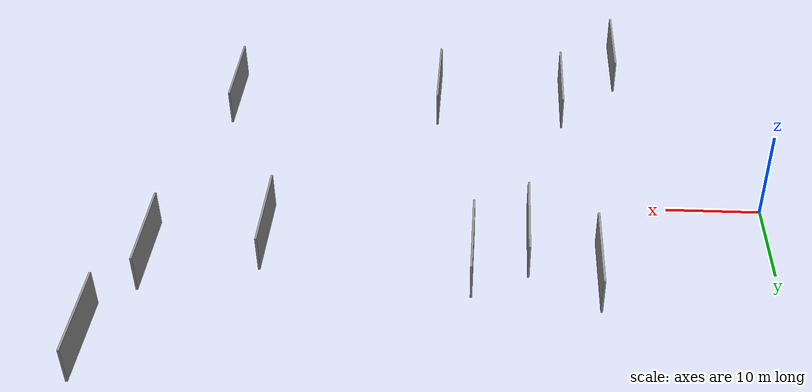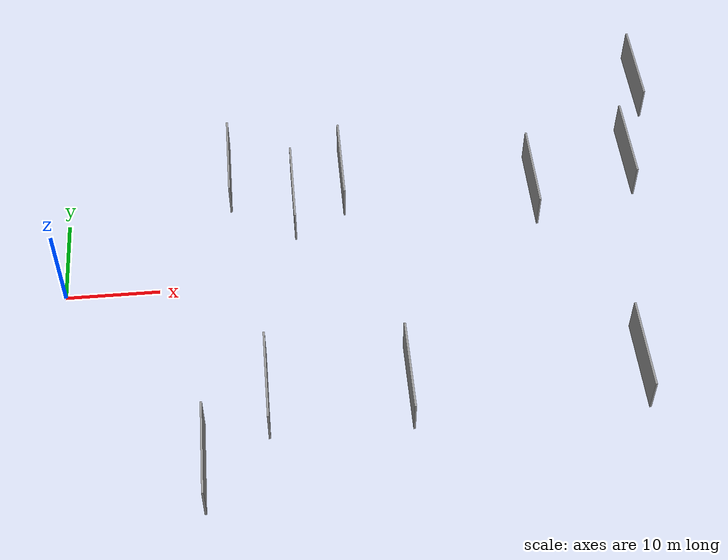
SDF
<sdf version="1.6">
 <world name="default">
  <scene>
   <sky><clouds><speed>12</speed></clouds></sky>
   <ambient>0.4 0.4 0.4 1</ambient>
   <background>0.7 0.7 0.7 1</background>
   <shadows>1</shadows>
  </scene>
  <gravity>0 0 -9.8066</gravity>
  <magnetic_field>6e-06 2.3e-05 -4.2e-05</magnetic_field>
  <physics default="0" name="default_physics" type="ode">
   <ode>
    <solver>
     <type>quick</type>
     <iters>10</iters>
     <sor>1.0</sor>
     <use_dynamic_moi_rescaling>0</use_dynamic_moi_rescaling>
    </solver>
    <constraints>
     <cfm>0</cfm>
     <erp>0.2</erp>
     <contact_max_correcting_vel>100</contact_max_correcting_vel>
     <contact_surface_layer>0.001</contact_surface_layer>
    </constraints>
   </ode>
   <max_step_size>0.004</max_step_size>
   <real_time_factor>1</real_time_factor>
   <real_time_update_rate>250</real_time_update_rate>
  </physics>
  <light name="sun" type="directional">
   <pose>0 0 10 0 0 0</pose>
   <diffuse>0.8 0.8 0.8 1</diffuse>
   <specular>0.2 0.2 0.2 1</specular>
   <attenuation>
    <range>1000</range>
    <constant>0.9</constant>
    <linear>0.01</linear>
    <quadratic>0.001</quadratic>
   </attenuation>
   <direction>-0.5 0.1 -0.9</direction>
  </light>
  <model name="grey_wall_1">
   <static>1</static>
   <pose>14.6973 -23.8588 2.5 0.000000 0.000000 1.570796</pose>
   <link name="link">
    <pose>0 0 2.00 0 0 0</pose>
    <collision name="collision"><geometry><box><size>10.00 0.2 4.00</size></box></geometry></collision>
    <visual name="visual">
     <cast_shadows>0</cast_shadows>
     <geometry><box><size>10.00 0.2 4.00</size></box></geometry>
     <material>
      <script>
       <uri>model://grey_wall/materials/scripts</uri>
       <uri>model://grey_wall/materials/textures</uri>
       <name>vrc/grey_wall</name>
      </script>
     </material>
    </visual>
   </link>
  </model>
  <model name="grey_wall_2">
   <static>1</static>
   <pose>21.0420 -16.0886 2.5 0.000000 0.000000 1.570796</pose>
   <link name="link">
    <pose>0 0 2.00 0 0 0</pose>
    <collision name="collision"><geometry><box><size>10.00 0.2 4.00</size></box></geometry></collision>
    <visual name="visual">
     <cast_shadows>0</cast_shadows>
     <geometry><box><size>10.00 0.2 4.00</size></box></geometry>
     <material>
      <script>
       <uri>model://grey_wall/materials/scripts</uri>
       <uri>model://grey_wall/materials/textures</uri>
       <name>vrc/grey_wall</name>
      </script>
     </material>
    </visual>
   </link>
  </model>
  <model name="grey_wall_3">
   <static>1</static>
   <pose>25.0212 9.0060 2.5 0.000000 0.000000 1.570796</pose>
   <link name="link">
    <pose>0 0 2.00 0 0 0</pose>
    <collision name="collision"><geometry><box><size>10.00 0.2 4.00</size></box></geometry></collision>
    <visual name="visual">
     <cast_shadows>0</cast_shadows>
     <geometry><box><size>10.00 0.2 4.00</size></box></geometry>
     <material>
      <script>
       <uri>model://grey_wall/materials/scripts</uri>
       <uri>model://grey_wall/materials/textures</uri>
       <name>vrc/grey_wall</name>
      </script>
     </material>
    </visual>
   </link>
  </model>
  <model name="grey_wall_4">
   <static>1</static>
   <pose>35.1709 -16.1494 2.5 0.000000 0.000000 1.570796</pose>
   <link name="link">
    <pose>0 0 2.00 0 0 0</pose>
    <collision name="collision"><geometry><box><size>10.00 0.2 4.00</size></box></geometry></collision>
    <visual name="visual">
     <cast_shadows>0</cast_shadows>
     <geometry><box><size>10.00 0.2 4.00</size></box></geometry>
     <material>
      <script>
       <uri>model://grey_wall/materials/scripts</uri>
       <uri>model://grey_wall/materials/textures</uri>
       <name>vrc/grey_wall</name>
      </script>
     </material>
    </visual>
   </link>
  </model>
  <model name="grey_wall_5">
   <static>1</static>
   <pose>58.6858 -15.6291 2.5 0.000000 0.000000 1.570796</pose>
   <link name="link">
    <pose>0 0 2.00 0 0 0</pose>
    <collision name="collision"><geometry><box><size>10.00 0.2 4.00</size></box></geometry></collision>
    <visual name="visual">
     <cast_shadows>0</cast_shadows>
     <geometry><box><size>10.00 0.2 4.00</size></box></geometry>
     <material>
      <script>
       <uri>model://grey_wall/materials/scripts</uri>
       <uri>model://grey_wall/materials/textures</uri>
       <name>vrc/grey_wall</name>
      </script>
     </material>
    </visual>
   </link>
  </model>
  <model name="grey_wall_6">
   <static>1</static>
   <pose>51.4607 9.0447 2.5 0.000000 0.000000 1.570796</pose>
   <link name="link">
    <pose>0 0 2.00 0 0 0</pose>
    <collision name="collision"><geometry><box><size>10.00 0.2 4.00</size></box></geometry></collision>
    <visual name="visual">
     <cast_shadows>0</cast_shadows>
     <geometry><box><size>10.00 0.2 4.00</size></box></geometry>
     <material>
      <script>
       <uri>model://grey_wall/materials/scripts</uri>
       <uri>model://grey_wall/materials/textures</uri>
       <name>vrc/grey_wall</name>
      </script>
     </material>
    </visual>
   </link>
  </model>
  <model name="grey_wall_7">
   <static>1</static>
   <pose>18.1410 13.5429 2.5 0.000000 0.000000 1.570796</pose>
   <link name="link">
    <pose>0 0 2.00 0 0 0</pose>
    <collision name="collision"><geometry><box><size>10.00 0.2 4.00</size></box></geometry></collision>
    <visual name="visual">
     <cast_shadows>0</cast_shadows>
     <geometry><box><size>10.00 0.2 4.00</size></box></geometry>
     <material>
      <script>
       <uri>model://grey_wall/materials/scripts</uri>
       <uri>model://grey_wall/materials/textures</uri>
       <name>vrc/grey_wall</name>
      </script>
     </material>
    </visual>
   </link>
  </model>
  <model name="grey_wall_8">
   <static>1</static>
   <pose>62.7788 12.4068 2.5 0.000000 0.000000 1.570796</pose>
   <link name="link">
    <pose>0 0 2.00 0 0 0</pose>
    <collision name="collision"><geometry><box><size>10.00 0.2 4.00</size></box></geometry></collision>
    <visual name="visual">
     <cast_shadows>0</cast_shadows>
     <geometry><box><size>10.00 0.2 4.00</size></box></geometry>
     <material>
      <script>
       <uri>model://grey_wall/materials/scripts</uri>
       <uri>model://grey_wall/materials/textures</uri>
       <name>vrc/grey_wall</name>
      </script>
     </material>
    </visual>
   </link>
  </model>
  <model name="grey_wall_9">
   <static>1</static>
   <pose>30.5392 12.0709 2.5 0.000000 0.000000 1.570796</pose>
   <link name="link">
    <pose>0 0 2.00 0 0 0</pose>
    <collision name="collision"><geometry><box><size>10.00 0.2 4.00</size></box></geometry></collision>
    <visual name="visual">
     <cast_shadows>0</cast_shadows>
     <geometry><box><size>10.00 0.2 4.00</size></box></geometry>
     <material>
      <script>
       <uri>model://grey_wall/materials/scripts</uri>
       <uri>model://grey_wall/materials/textures</uri>
       <name>vrc/grey_wall</name>
      </script>
     </material>
    </visual>
   </link>
  </model>
  <model name="grey_wall_10">
   <static>1</static>
   <pose>66.0860 24.3828 2.5 0.000000 0.000000 1.570796</pose>
   <link name="link">
    <pose>0 0 2.00 0 0 0</pose>
    <collision name="collision"><geometry><box><size>10.00 0.2 4.00</size></box></geometry></collision>
    <visual name="visual">
     <cast_shadows>0</cast_shadows>
     <geometry><box><size>10.00 0.2 4.00</size></box></geometry>
     <material>
      <script>
       <uri>model://grey_wall/materials/scripts</uri>
       <uri>model://grey_wall/materials/textures</uri>
       <name>vrc/grey_wall</name>
      </script>
     </material>
    </visual>
   </link>
  </model>
 </world>
</sdf>
